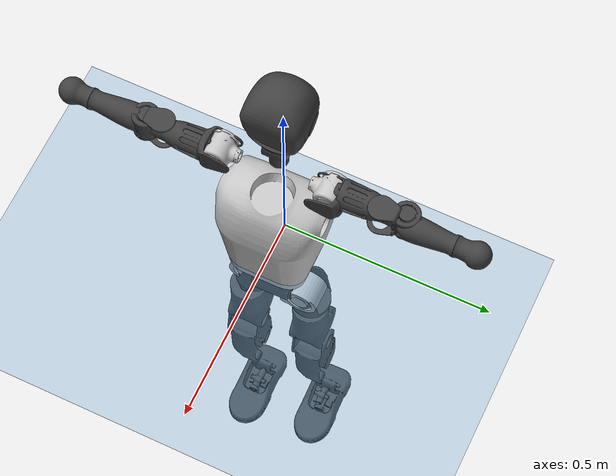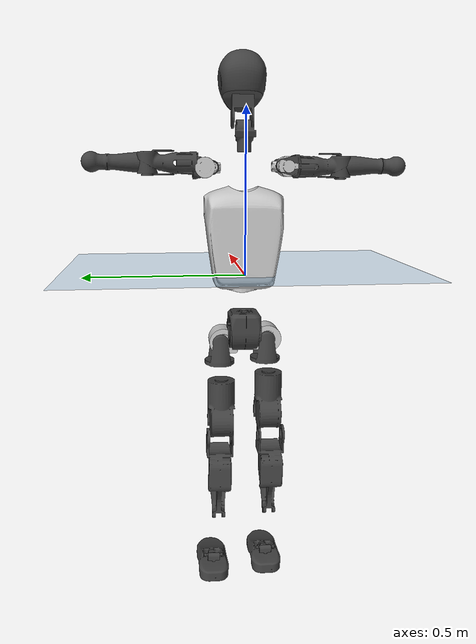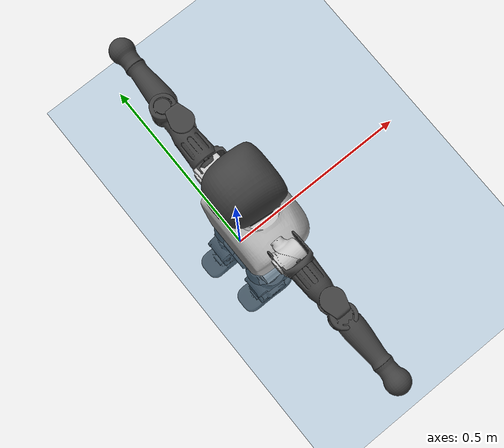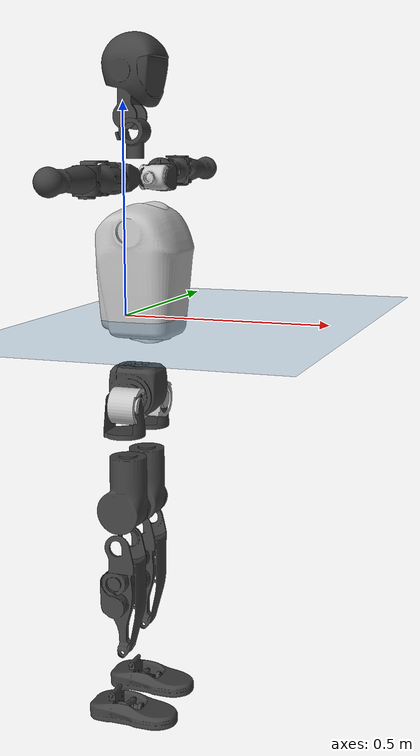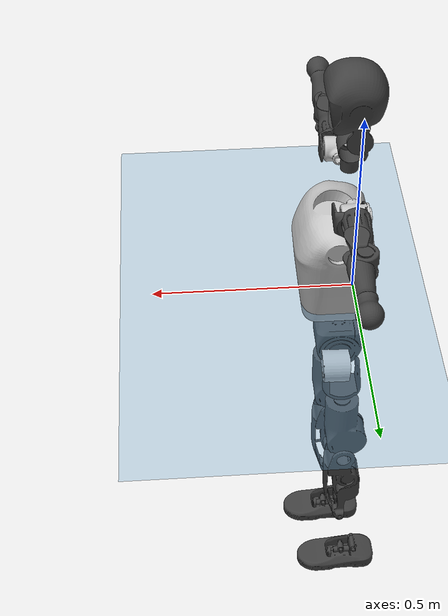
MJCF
<mujoco model="T1">
  <compiler angle="radian" assetdir="assets" balanceinertia="true" inertiafromgeom="false"/>

  <option timestep="0.005" density="1.2" viscosity="2e-05"/>

  <size nkey="1"/>

  <visual>
    <quality shadowsize="8192"/>
    <map shadowclip="0.5"/>
  </visual>

  <default>
    <default class="/">
      <joint armature="0.01" damping="0.01" frictionloss="0.1"/>
      <geom contype="0" conaffinity="0" group="1" solref="-1000 -80"/>
      <site size="0.01 0.005 0.005" group="5"/>
      <general forcelimited="true" biastype="affine" gainprm="25" biasprm="0 -25 -0.6"/>
      <default class="t1">
        <geom rgba="0.25 0.25 0.25 1"/>
        <default class="visual">
          <geom type="mesh" group="2"/>
        </default>
        <default class="collision">
          <geom group="3"/>
        </default>
        <default class="foot">
          <geom size="0.1115 0.05 0.015" type="box" condim="6" group="4" priority="1" solimp="0.015 1 0.015"/>
        </default>
        <default class="reward_collision_sphere">
          <geom group="5" rgba="1 0 0 1"/>
        </default>
      </default>
    </default>
  </default>

  <asset>
    <texture type="skybox" colorspace="auto" name="//unnamed_texture_0" builtin="gradient" rgb1="0.95 0.95 0.95" rgb2="0.95 0.95 0.95" width="100" height="600"/>
    <texture type="2d" colorspace="auto" name="texplane" builtin="checker" rgb1="0.345 0.575 0.748" rgb2="0.345 0.575 0.748" markrgb="1 1 1" width="512" height="512"/>
    <material name="MatPlane" class="/" texture="texplane" texuniform="true" texrepeat="2 2" specular="0.9"/>
    <mesh name="Trunk" class="/" file="Trunk.stl"/>
    <mesh name="H1" class="/" file="H1.stl"/>
    <mesh name="H2" class="/" file="H2.stl"/>
    <mesh name="AL1" class="/" file="AL1.stl"/>
    <mesh name="AL2" class="/" file="AL2.stl"/>
    <mesh name="AL3" class="/" file="AL3.stl"/>
    <mesh name="left_hand_link" class="/" file="left_hand_link.stl"/>
    <mesh name="AR1" class="/" file="AR1.stl"/>
    <mesh name="AR2" class="/" file="AR2.stl"/>
    <mesh name="AR3" class="/" file="AR3.stl"/>
    <mesh name="right_hand_link" class="/" file="right_hand_link.stl"/>
    <mesh name="Waist" class="/" file="Waist.stl"/>
    <mesh name="Hip_Pitch_Left" class="/" file="Hip_Pitch_Left.stl"/>
    <mesh name="Hip_Roll_Left" class="/" file="Hip_Roll_Left.stl"/>
    <mesh name="Hip_Yaw_Left" class="/" file="Hip_Yaw_Left.stl"/>
    <mesh name="Shank_Left" class="/" file="Shank_Left.stl"/>
    <mesh name="Ankle_Cross_Left" class="/" file="Ankle_Cross_Left.stl"/>
    <mesh name="left_foot_link" class="/" file="left_foot_link.stl"/>
    <mesh name="Hip_Pitch_Right" class="/" file="Hip_Pitch_Right.stl"/>
    <mesh name="Hip_Roll_Right" class="/" file="Hip_Roll_Right.stl"/>
    <mesh name="Hip_Yaw_Right" class="/" file="Hip_Yaw_Right.stl"/>
    <mesh name="Shank_Right" class="/" file="Shank_Right.stl"/>
    <mesh name="Ankle_Cross_Right" class="/" file="Ankle_Cross_Right.stl"/>
    <mesh name="right_foot_link" class="/" file="right_foot_link.stl"/>
  </asset>

  <worldbody>
    <geom name="floor" class="/" size="100 100 0.125" type="plane" group="0" material="MatPlane"/>
    <light name="toplight_shadow" class="/" pos="0 0 5" dir="0.0990148 0.0990148 -0.990148" type="directional" ambient="0.04 0.04 0.04" diffuse="0.55 0.55 0.55" specular="0.12 0.12 0.12"/>
    <light name="toplight_fill" class="/" pos="0 0 5" dir="0.0990148 0.0990148 -0.990148" type="directional" castshadow="false" ambient="0.04 0.04 0.04" diffuse="0.3 0.3 0.3" specular="0.08 0.08 0.08"/>
    <body name="trunk" childclass="t1" pos="-0.000856513 0.00246246 -0.00956561" quat="0.999996 0.00276679 0.000386354 0.000963062">
      <inertial pos="0.0348281 0.00885474 0.156032" quat="0.999937 -0.00350424 -0.0102477 0.00283534" mass="9.57524" diaginertia="0.00195261 0.0151639 0.454424"/>
      <joint name="//unnamed_joint_0" type="free" armature="0" damping="0" frictionloss="0"/>
      <geom name="//unnamed_geom_1" class="visual" rgba="0.76 0.76 0.76 1" mesh="Trunk"/>
      <geom name="//unnamed_geom_2" class="collision" size="0.0683668 0.0911557 0.136734" pos="0.0285949 0 0.184952" type="box"/>
      <geom name="//unnamed_geom_3" class="reward_collision_sphere" size="0.104829" pos="0.0285949 0 0.154127"/>
      <geom name="//unnamed_geom_4" class="reward_collision_sphere" size="0.0136734" pos="0.0285949 0.0609296 0"/>
      <geom name="//unnamed_geom_5" class="reward_collision_sphere" size="0.0136734" pos="0.0285949 -0.0609296 0"/>
      <geom name="//unnamed_geom_6" class="reward_collision_sphere" size="0.0136734" pos="0.0285949 0.0766997 0.277428"/>
      <geom name="//unnamed_geom_7" class="reward_collision_sphere" size="0.0136734" pos="0.0285949 -0.0766997 0.277428"/>
      <site name="imu" pos="0.0688951 -0.0709363 0.0677373" size="0.00911557"/>
      <camera name="track" pos="0 -1.43364 0" quat="0.707107 0.707107 0 0" mode="trackcom"/>
      <camera name="ego_camera" pos="0.058143 0 0.647333" quat="-0.5 -0.5 0.5 0.5"/>
      <body name="H1" pos="0.0291404 0.00249092 0.379416" quat="0.999977 -0.000990929 0.000731289 -0.00661136">
        <inertial pos="-0.000832361 -0.00338938 0.0829447" quat="0.755124 -0.014463 0.0038324 0.655411" mass="0.232047" diaginertia="5.71222e-06 3.35679e-05 0.0010913"/>
        <joint name="AAHead_yaw" pos="0 0 0" axis="-0.0262795 0.0320588 0.99914" stiffness="0.0173926" range="-1.61416 1.56798" armature="0.002154" damping="0.056032" frictionloss="0.0927096"/>
        <geom name="//unnamed_geom_8" class="visual" mesh="H1"/>
        <body name="H2" pos="-0.0155277 0.0084723 0.0958931" quat="0.999993 0.00240014 -0.000411088 -0.00287309">
          <inertial pos="0.00278066 -0.00243998 0.152901" quat="0.986744 0.107251 -0.078353 -0.0932398" mass="0.50914" diaginertia="5.04362e-05 0.000371187 0.0136043"/>
          <joint name="Head_pitch" pos="0 0 0" axis="-0.038486 -0.998778 0.0310012" range="-1.15628 0.522265" armature="0.00688814" damping="0.0367455" frictionloss="0.101285"/>
          <geom name="//unnamed_geom_9" class="visual" mesh="H2"/>
          <geom name="//unnamed_geom_10" class="collision" size="0.0729246" pos="0.00476582 0 0.16954"/>
          <geom name="//unnamed_geom_11" class="reward_collision_sphere" size="0.0820401" pos="0.00953165 0 0.154127"/>
        </body>
      </body>
      <body name="AL1" pos="0.0287296 0.0748912 0.332708" quat="0.999983 0.00043334 0.00540461 0.0019876">
        <inertial pos="-0.000559579 0.0203986 0.00037498" quat="0.493246 0.49623 -0.505725 0.504685" mass="0.396959" diaginertia="3.00053e-05 0.000263735 0.00274999"/>
        <joint name="Left_Shoulder_Pitch" pos="0 0 0" axis="-0.000113442 1 0.00019177" stiffness="0.0293415" range="-3.43689 1.25829" armature="0.0111409" damping="0.00389823" frictionloss="0.132502"/>
        <geom name="//unnamed_geom_12" class="visual" rgba="0.76 0.76 0.76 1" mesh="AL1"/>
        <body name="AL2" pos="0.0114737 0.0261457 0.000348813" quat="1 1.88686e-06 0.000110588 2.81106e-05">
          <inertial pos="0.00131431 0.031546 -0.0124912" quat="0.490545 0.510565 -0.485664 0.51266" mass="0.0900916" diaginertia="8.5812e-06 6.67355e-05 0.00121939"/>
          <joint name="Left_Shoulder_Roll" pos="0 0 0" axis="-0.999406 0.0130035 -0.0319035" range="-1.84386 1.47147" armature="0.0147256" damping="0.0506243" frictionloss="0.0956921"/>
          <geom name="//unnamed_geom_13" class="visual" mesh="AL2"/>
          <body name="AL3" pos="-0.00919392 0.0441157 0.0120994" quat="0.999999 0.000953188 0.000697966 -0.000181055">
            <inertial pos="-0.00927359 0.0615782 -0.000303237" quat="0.703867 0.709355 -0.0316316 -0.0196201" mass="0.8508" diaginertia="0.000380348 0.0022868 0.00681889"/>
            <joint name="Left_Elbow_Pitch" pos="0 0 0" axis="-0.0165001 -0.997238 0.0724209" stiffness="0.0717347" range="-2.54607 2.04269" armature="0.0160641" damping="0.0850307" frictionloss="0.137184"/>
            <geom name="//unnamed_geom_14" class="visual" mesh="AL3"/>
            <geom name="//unnamed_geom_15" class="collision" size="0.0273467 0.0683668" pos="0 0.035841 0" quat="0.707105 0.707108 0 0" type="cylinder"/>
            <geom name="//unnamed_geom_16" class="reward_collision_sphere" size="0.032816"/>
            <body name="left_hand_link" pos="0.0113153 0.0948048 0.00105167" quat="0.999994 0.00205655 0.00141677 -0.00254706">
              <inertial pos="0.00266183 0.0757877 -0.00722267" quat="0.707625 0.706588 0.000532662 0.000362898" mass="0.247532" diaginertia="0.000174145 0.00132557 0.00189851"/>
              <joint name="Left_Elbow_Yaw" pos="0 0 0" axis="-0.00994422 -0.0461489 0.998885" stiffness="0.0222228" range="-2.29397 -0.0256971" armature="0.00226448" damping="0" frictionloss="0.129811"/>
              <geom name="//unnamed_geom_17" class="visual" mesh="left_hand_link"/>
              <geom name="//unnamed_geom_18" class="collision" size="0.0273467 0.0797612" pos="0 0.0931865 0" quat="0.707105 0.707108 0 0" type="cylinder"/>
              <geom name="//unnamed_geom_19" class="reward_collision_sphere" size="0.0455778"/>
              <geom name="//unnamed_geom_20" class="reward_collision_sphere" size="0.0319045" pos="0 0.0788501 0"/>
              <geom name="//unnamed_geom_21" class="reward_collision_sphere" size="0.0319045" pos="0 0.154116 0"/>
            </body>
          </body>
        </body>
      </body>
      <body name="AR1" pos="0.0391238 -0.0842093 0.337755" quat="1 1.60904e-05 -0.000344392 -1.775e-05">
        <inertial pos="0.012966 -0.0385123 -0.0101429" quat="0.531958 0.439342 -0.489514 0.533269" mass="0.360226" diaginertia="3.65262e-05 0.000266355 0.00209126"/>
        <joint name="Right_Shoulder_Pitch" pos="0 0 0" axis="0.00177482 -0.999996 -0.00214558" range="-1.22471 3.3332" armature="0.00943316" damping="0" frictionloss="0.136768"/>
        <geom name="//unnamed_geom_22" class="visual" rgba="0.76 0.76 0.76 1" mesh="AR1"/>
        <body name="AR2" pos="0.00456546 -0.0281206 0.00142054" quat="0.999996 0.00124486 -0.00206037 0.00122359">
          <inertial pos="-0.0030138 -0.0297193 -0.00703914" quat="0.513544 0.48444 -0.51089 0.490491" mass="0.123245" diaginertia="9.69689e-06 5.50729e-05 0.00137755"/>
          <joint name="Right_Shoulder_Roll" pos="0 0 0" axis="-0.999521 0.0071989 0.0300982" stiffness="0.010813" range="-1.89491 1.28628" armature="0.013442" damping="0" frictionloss="0.0783972"/>
          <geom name="//unnamed_geom_23" class="visual" mesh="AR2"/>
          <body name="AR3" pos="0.00179167 -0.0405677 -0.00193884" quat="1 -0.000189902 0.000629709 -0.000208361">
            <inertial pos="-0.0017899 -0.0476876 -0.0111356" quat="0.708063 0.704262 -0.0178656 -0.0484128" mass="0.739819" diaginertia="0.000289603 0.00276253 0.00470651"/>
            <joint name="Right_Elbow_Pitch" pos="0 0 0" axis="-0.0203491 0.999365 0.0292429" range="-2.44509 2.47711" armature="0.00860371" damping="0" frictionloss="0.0948506"/>
            <geom name="//unnamed_geom_24" class="visual" mesh="AR3"/>
            <geom name="//unnamed_geom_25" class="collision" size="0.0273467 0.0683668" pos="0 -0.035841 0" quat="0.707105 0.707108 0 0" type="cylinder"/>
            <geom name="//unnamed_geom_26" class="reward_collision_sphere" size="0.032816"/>
            <body name="right_hand_link" pos="0.00218423 -0.106108 0.0039605" quat="0.999994 0.00223235 -0.00139463 -0.00220371">
              <inertial pos="0.000277723 -0.0757579 0.0123126" quat="0.710969 0.703202 5.63446e-05 0.00548623" mass="0.264702" diaginertia="0.000189504 0.00152435 0.00209673"/>
              <joint name="Right_Elbow_Yaw" pos="0 0 0" axis="0.00722541 0.00776238 0.999944" range="-0.0506849 2.45043" armature="0.00888555" damping="0.0296507" frictionloss="0.0473358"/>
              <geom name="//unnamed_geom_27" class="visual" mesh="right_hand_link"/>
              <geom name="//unnamed_geom_28" class="collision" size="0.0273467 0.0797612" pos="0 -0.0931865 0" quat="0.707105 0.707108 0 0" type="cylinder"/>
              <geom name="//unnamed_geom_29" class="reward_collision_sphere" size="0.0455778"/>
              <geom name="//unnamed_geom_30" class="reward_collision_sphere" size="0.0319045" pos="0 -0.0788501 0"/>
              <geom name="//unnamed_geom_31" class="reward_collision_sphere" size="0.0319045" pos="0 -0.154116 0"/>
            </body>
          </body>
        </body>
      </body>
      <body name="Waist" pos="0.0302577 -0.0026363 -0.17695" quat="0.999991 0.00297604 0.00305759 0.000292724">
        <inertial pos="0.0170896 -0.0102825 0.0107069" quat="0.984487 -5.70603e-06 -0.175149 0.0104058" mass="2.21971" diaginertia="0.000166931 0.00113122 0.0399862"/>
        <joint name="Waist" pos="0 0 0" axis="0.0070268 -0.0700394 0.997519" range="-1.6792 1.68392" armature="0.0124558" damping="0" frictionloss="0.0896483"/>
        <geom name="//unnamed_geom_32" class="visual" mesh="Waist"/>
        <body name="Hip_Pitch_Left" pos="0.0129353 0.067436 -0.010088" quat="0.999969 0.0017009 -0.00473151 -0.00607672">
          <inertial pos="0.011519 -0.0191244 -0.0281602" quat="0.975482 0.219444 0.0166289 0.00164081" mass="0.8283" diaginertia="5.16017e-05 0.000342886 0.0106058"/>
          <joint name="Left_Hip_Pitch" pos="0 0 0" axis="-0.0323112 0.999437 -0.0090295" range="-1.71722 1.55365" armature="0.0146035" damping="0.00739193" frictionloss="0.025878"/>
          <geom name="//unnamed_geom_33" class="visual" rgba="0.76 0.76 0.76 1" mesh="Hip_Pitch_Left"/>
          <body name="Hip_Roll_Left" pos="-0.0155178 0.0100807 -0.0152665" quat="0.99997 -0.00148058 0.0057329 0.00506954">
            <inertial pos="-0.00854827 0.00676789 -0.0693192" quat="0.701814 -0.00518386 -0.0114012 0.71225" mass="0.3062" diaginertia="4.19911e-05 0.000265669 0.00420645"/>
            <joint name="Left_Hip_Roll" pos="0 0 0" axis="-0.999811 -0.0186365 0.00554489" range="-1.58003 0.19246" armature="0.00506794" damping="0" frictionloss="0.0945927"/>
            <geom name="//unnamed_geom_34" class="visual" mesh="Hip_Roll_Left"/>
            <geom name="//unnamed_geom_35" class="reward_collision_sphere" size="0.0501356"/>
            <body name="Hip_Yaw_Left" pos="-0.00741191 -0.00539684 -0.134258" quat="0.999998 0.000770743 -1.22489e-05 -0.0016799">
              <inertial pos="-0.00524041 -0.0155112 -0.150905" quat="0.680217 -0.0367551 -0.0251506 0.731657" mass="1.73266" diaginertia="0.000671943 0.00508478 0.0230126"/>
              <joint name="Left_Hip_Yaw" pos="0 0 0" axis="0.026992 -0.00898352 -0.999595" range="-1.01846 0.999393" armature="0.00932332" damping="0.0168461" frictionloss="0.0479403"/>
              <geom name="//unnamed_geom_36" class="visual" mesh="Hip_Yaw_Left"/>
              <geom name="//unnamed_geom_37" class="collision" size="0.0455778 0.0729246" type="cylinder"/>
              <body name="Shank_Left" pos="-0.00654958 0.00326597 -0.197681" quat="0.999984 0.00370311 0.00391659 0.00165119">
                <inertial pos="-0.0024974 0.0101027 -0.198173" quat="0.992972 0.0445347 -0.00558918 0.109511" mass="1.43237" diaginertia="0.000882909 0.00616111 0.0168288"/>
                <joint name="Left_Knee_Pitch" pos="0 0 0" axis="-0.024786 0.999654 -0.00880688" stiffness="0.00174547" range="-0.0124961 2.58161" armature="0.00375486" damping="0.0393777" frictionloss="0.0926745"/>
                <geom name="//unnamed_geom_38" class="visual" mesh="Shank_Left"/>
                <geom name="//unnamed_geom_39" class="collision" size="0.0455778 0.0683668" pos="0 0 -0.184952" type="cylinder"/>
                <geom name="//unnamed_geom_40" class="reward_collision_sphere" size="0.0592512"/>
                <body name="Ankle_Cross_Left" pos="-0.00783873 0.0111249 -0.435679" quat="0.999994 -0.00269825 -0.00203794 -0.000256695">
                  <inertial pos="0.00108465 9.66132e-05 -0.0177371" quat="0.471282 0.532446 0.521255 0.471898" mass="0.058063" diaginertia="5.8152e-07 4.60069e-06 9.21875e-05"/>
                  <joint name="Left_Ankle_Pitch" pos="0 0 0" axis="0.000765298 0.999999 -0.000791665" range="-0.589413 0.070751" armature="0.00518857" damping="0.0830953" frictionloss="0.0511567"/>
                  <geom name="//unnamed_geom_41" class="visual" mesh="Ankle_Cross_Left"/>
                  <body name="left_foot_link" pos="0.00831256 0.0082696 -0.0060258" quat="0.999975 0.00595224 -0.000568322 0.00371614">
                    <inertial pos="0.00408922 -0.00370299 -0.0153209" quat="-0.00583807 0.580746 -0.0233766 0.813728" mass="0.419118" diaginertia="5.77461e-05 0.000359401 0.0123291"/>
                    <joint name="Left_Ankle_Roll" pos="0 0 0" axis="-0.998145 -0.0177861 0.0582173" range="-0.46022 0.151903" armature="0.00814914" damping="0.00644851" frictionloss="0.0184381"/>
                    <geom name="//unnamed_geom_42" class="visual" mesh="left_foot_link"/>
                    <geom name="left_foot" class="foot" size="0.0907538 0.0652582 0.0055267" pos="0.00476582 0 -0.023119"/>
                    <geom name="//unnamed_geom_44" class="reward_collision_sphere" size="0.047401" pos="0.00476582 0 -0.023119"/>
                    <geom name="//unnamed_geom_45" class="reward_collision_sphere" size="0.0273467" pos="0.0452753 -0.0164868 -0.023119"/>
                    <geom name="//unnamed_geom_46" class="reward_collision_sphere" size="0.0273467" pos="-0.0333608 -0.0164868 -0.023119"/>
                    <site name="left_foot" class="foot" pos="0.00476582 0 -0.023119" size="0.00911557"/>
                  </body>
                </body>
              </body>
            </body>
          </body>
        </body>
        <body name="Hip_Pitch_Right" pos="0.00289547 -0.0730199 0.00158491" quat="0.999999 0.0010241 0.000354004 -0.000804212">
          <inertial pos="0.00689374 0.00507831 -0.0204725" quat="0.972542 -0.225109 -0.0394607 0.0439498" mass="0.991185" diaginertia="5.22746e-05 0.000296548 0.0138143"/>
          <joint name="Right_Hip_Pitch" pos="0 0 0" axis="-0.00875578 -0.99979 -0.0185393" range="-1.59336 1.96302" armature="0.00563409" damping="0.00399687" frictionloss="0.0935788"/>
          <geom name="//unnamed_geom_47" class="visual" rgba="0.76 0.76 0.76 1" mesh="Hip_Pitch_Right"/>
          <body name="Hip_Roll_Right" pos="-0.00857685 0.00350681 -0.0176842" quat="0.999999 -0.00117197 -0.000602768 -0.000708754">
            <inertial pos="0.00401976 -0.00959973 -0.0824774" quat="0.704496 -0.050594 -0.0344646 0.707062" mass="0.31519" diaginertia="4.03348e-05 0.000269231 0.00490422"/>
            <joint name="Right_Hip_Roll" pos="0 0 0" axis="-0.999772 -0.0208566 -0.00452885" stiffness="0.0784234" range="-0.135408 1.55338" armature="0.0133573" damping="0.00640128" frictionloss="0.094473"/>
            <geom name="//unnamed_geom_48" class="visual" mesh="Hip_Roll_Right"/>
            <geom name="//unnamed_geom_49" class="reward_collision_sphere" size="0.0501356"/>
            <body name="Hip_Yaw_Right" pos="0.0124445 -0.0151611 -0.1233" quat="1 -0.000512015 0.000196635 0.000414114">
              <inertial pos="0.00750988 -5.49052e-05 -0.122903" quat="0.736823 0.00029489 0.00171875 0.676084" mass="1.33735" diaginertia="0.000602196 0.00446145 0.0209875"/>
              <joint name="Right_Hip_Yaw" pos="0 0 0" axis="0.0153307 -0.00155417 -0.999881" stiffness="0.0256506" range="-1.25148 1.16971" armature="0.00824322" damping="0.0254523" frictionloss="0.086355"/>
              <geom name="//unnamed_geom_50" class="visual" mesh="Hip_Yaw_Right"/>
              <geom name="//unnamed_geom_51" class="collision" size="0.0455778 0.0729246" type="cylinder"/>
              <body name="Shank_Right" pos="-0.00992832 -0.0106042 -0.216941" quat="1 1.70546e-05 0.000478792 0.000231625">
                <inertial pos="-0.0187103 -0.00283548 -0.18217" quat="0.99727 -0.0400951 -0.06137 -0.00887308" mass="1.74846" diaginertia="0.000992858 0.00641786 0.019331"/>
                <joint name="Right_Knee_Pitch" pos="0 0 0" axis="0.0272911 -0.998466 0.0481838" stiffness="0.0034915" range="-2.32603 -0.0795895" armature="0.0054124" damping="0.0459445" frictionloss="0.0408496"/>
                <geom name="//unnamed_geom_52" class="visual" mesh="Shank_Right"/>
                <geom name="//unnamed_geom_53" class="collision" size="0.0455778 0.0683668" pos="0 0 -0.184952" type="cylinder"/>
                <geom name="//unnamed_geom_54" class="reward_collision_sphere" size="0.0592512"/>
                <body name="Ankle_Cross_Right" pos="0.00802936 0.0143847 -0.428" quat="0.999977 -0.00388286 -0.0007764 -0.00559038">
                  <inertial pos="0.0017373 0.00123826 -0.00966977" quat="0.443536 0.55105 0.551226 0.442459" mass="0.05479" diaginertia="8.24566e-07 4.78159e-06 0.000105379"/>
                  <joint name="Right_Ankle_Pitch" pos="0 0 0" axis="0.0275039 -0.999501 0.0155045" range="-0.20111 0.580877" armature="0.00966909" damping="0" frictionloss="0.0876556"/>
                  <geom name="//unnamed_geom_55" class="visual" mesh="Ankle_Cross_Right"/>
                  <body name="right_foot_link" pos="-0.00109793 -0.00042428 -0.00928045" quat="0.999984 0.00438969 -0.00305471 0.00173743">
                    <inertial pos="0.010961 0.00344395 -0.0150239" quat="-0.00937813 0.601677 -0.00410541 0.798674" mass="0.524789" diaginertia="7.85262e-05 0.000510507 0.0205773"/>
                    <joint name="Right_Ankle_Roll" pos="0 0 0" axis="-0.999999 -0.00135905 -0.000299803" range="-0.610519 0.591884" armature="0.00695098" damping="0" frictionloss="0.0726112"/>
                    <geom name="//unnamed_geom_56" class="visual" mesh="right_foot_link"/>
                    <geom name="right_foot" class="foot" size="0.103048 0.0615429 0.0143109" pos="0.00476582 0 -0.023119"/>
                    <geom name="//unnamed_geom_58" class="reward_collision_sphere" size="0.0364623"/>
                    <geom name="//unnamed_geom_59" class="reward_collision_sphere" size="0.0273467" pos="0.00476582 0 -0.023119"/>
                    <geom name="//unnamed_geom_60" class="reward_collision_sphere" size="0.0273467" pos="0.0452753 0.0164868 -0.023119"/>
                    <geom name="//unnamed_geom_61" class="reward_collision_sphere" size="0.0273467" pos="-0.0333608 0.0164868 -0.023119"/>
                    <site name="right_foot" class="foot" pos="0.00476582 0 -0.023119" size="0.00911557"/>
                  </body>
                </body>
              </body>
            </body>
          </body>
        </body>
      </body>
    </body>
  </worldbody>

  <contact>
    <pair class="/" geom1="floor" geom2="left_foot" name="//unnamed_contact_0"/>
    <pair class="/" geom1="floor" geom2="right_foot" name="//unnamed_contact_1"/>
  </contact>

  <actuator>
    <general name="AAHead_yaw" class="/" joint="AAHead_yaw" forcerange="-7.64565 7.64565" gainprm="30.6895" biasprm="0 -30.6895 -0.6009"/>
    <general name="Head_pitch" class="/" joint="Head_pitch" forcerange="-5.37182 5.37182" gainprm="30.6895" biasprm="0 -30.6895 -0.6009"/>
    <general name="Left_Shoulder_Pitch" class="/" joint="Left_Shoulder_Pitch" forcerange="-14.9735 14.9735" gainprm="30.6895" biasprm="0 -30.6895 -0.6009"/>
    <general name="Left_Shoulder_Roll" class="/" joint="Left_Shoulder_Roll" forcerange="-21.4193 21.4193" gainprm="30.6895" biasprm="0 -30.6895 -0.6009"/>
    <general name="Left_Elbow_Pitch" class="/" joint="Left_Elbow_Pitch" forcerange="-25.2417 25.2417" gainprm="30.6895" biasprm="0 -30.6895 -0.6009"/>
    <general name="Left_Elbow_Yaw" class="/" joint="Left_Elbow_Yaw" forcerange="-8.6357 8.6357" gainprm="30.6895" biasprm="0 -30.6895 -0.6009"/>
    <general name="Right_Shoulder_Pitch" class="/" joint="Right_Shoulder_Pitch" forcerange="-8.30805 8.30805" gainprm="30.6895" biasprm="0 -30.6895 -0.6009"/>
    <general name="Right_Shoulder_Roll" class="/" joint="Right_Shoulder_Roll" forcerange="-20.3502 20.3502" gainprm="30.6895" biasprm="0 -30.6895 -0.6009"/>
    <general name="Right_Elbow_Pitch" class="/" joint="Right_Elbow_Pitch" forcerange="-16.7478 16.7478" gainprm="30.6895" biasprm="0 -30.6895 -0.6009"/>
    <general name="Right_Elbow_Yaw" class="/" joint="Right_Elbow_Yaw" forcerange="-16.7781 16.7781" gainprm="30.6895" biasprm="0 -30.6895 -0.6009"/>
    <general name="Waist" class="/" joint="Waist" forcerange="-28.8871 28.8871" gainprm="30.6895" biasprm="0 -30.6895 -0.6009"/>
    <general name="Left_Hip_Pitch" class="/" joint="Left_Hip_Pitch" forcerange="-50.9471 50.9471" gainprm="30.6895" biasprm="0 -30.6895 -0.6009"/>
    <general name="Left_Hip_Roll" class="/" joint="Left_Hip_Roll" forcerange="-13.7849 13.7849" gainprm="30.6895" biasprm="0 -30.6895 -0.6009"/>
    <general name="Left_Hip_Yaw" class="/" joint="Left_Hip_Yaw" forcerange="-42.2053 42.2053" gainprm="30.6895" biasprm="0 -30.6895 -0.6009"/>
    <general name="Left_Knee_Pitch" class="/" joint="Left_Knee_Pitch" forcerange="-84.1024 84.1024" gainprm="30.6895" biasprm="0 -30.6895 -0.6009"/>
    <general name="Left_Ankle_Pitch" class="/" joint="Left_Ankle_Pitch" forcerange="-18.4829 18.4829" gainprm="30.6895" biasprm="0 -30.6895 -0.6009"/>
    <general name="Left_Ankle_Roll" class="/" joint="Left_Ankle_Roll" forcerange="-14.0138 14.0138" gainprm="30.6895" biasprm="0 -30.6895 -0.6009"/>
    <general name="Right_Hip_Pitch" class="/" joint="Right_Hip_Pitch" forcerange="-33.0925 33.0925" gainprm="30.6895" biasprm="0 -30.6895 -0.6009"/>
    <general name="Right_Hip_Roll" class="/" joint="Right_Hip_Roll" forcerange="-27.1673 27.1673" gainprm="30.6895" biasprm="0 -30.6895 -0.6009"/>
    <general name="Right_Hip_Yaw" class="/" joint="Right_Hip_Yaw" forcerange="-19.3236 19.3236" gainprm="30.6895" biasprm="0 -30.6895 -0.6009"/>
    <general name="Right_Knee_Pitch" class="/" joint="Right_Knee_Pitch" forcerange="-51.5883 51.5883" gainprm="30.6895" biasprm="0 -30.6895 -0.6009"/>
    <general name="Right_Ankle_Pitch" class="/" joint="Right_Ankle_Pitch" forcerange="-26.5673 26.5673" gainprm="30.6895" biasprm="0 -30.6895 -0.6009"/>
    <general name="Right_Ankle_Roll" class="/" joint="Right_Ankle_Roll" forcerange="-13.9188 13.9188" gainprm="30.6895" biasprm="0 -30.6895 -0.6009"/>
  </actuator>

  <sensor>
    <gyro site="imu" name="imu_angular_velocity"/>
    <velocimeter site="imu" name="imu_linear_velocity"/>
    <framelinvel objtype="site" objname="left_foot" name="left_foot_global_linear_velocity"/>
    <framelinvel objtype="site" objname="right_foot" name="right_foot_global_linear_velocity"/>
  </sensor>

  <keyframe>
    <key name="home" qpos="0 0 0.6385 1 0 0 0 0 0 0 1.4 0 -0.4 0 -1.4 0 0.4 0 -0.4 0 0 0.8 -0.4 0 0.4 0 0 -0.8 0.4 0"/>
  </keyframe>
</mujoco>
